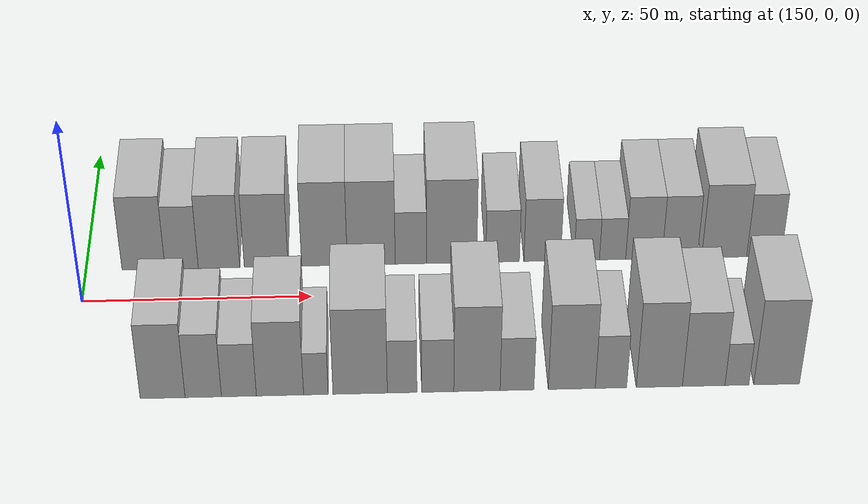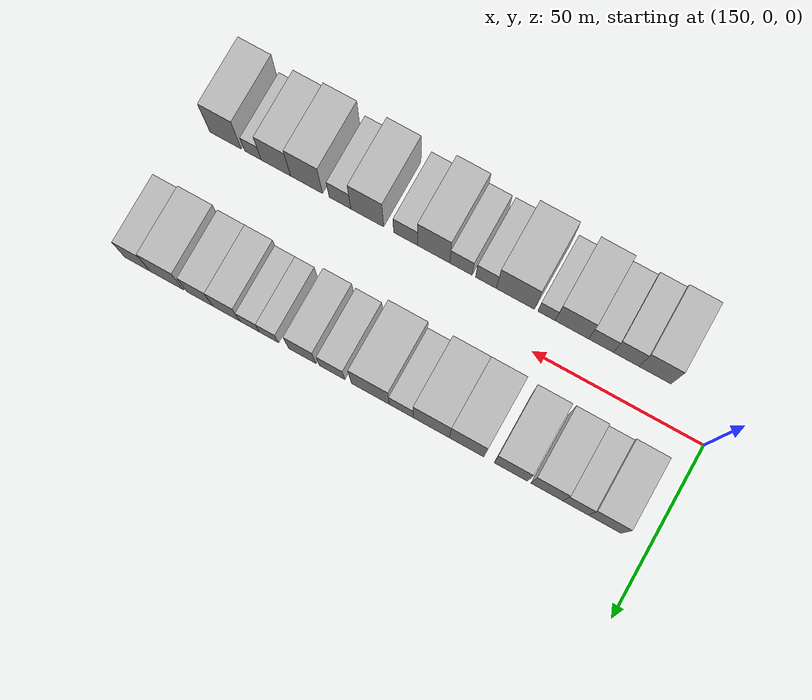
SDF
<sdf version="1.6">
 <world name="default">
  <model name="building_16">
   <static>1</static>
   <pose>162.6856 20.0000 0 0.000000 0.000000 1.570796</pose>
   <link name="link">
    <pose>0 0 10.50 0 0 0</pose>
    <collision name="collision"><geometry><box><size>20.0000 9.4940 21.0000</size></box></geometry></collision>
    <visual name="visual">
     <cast_shadows>0</cast_shadows>
     <geometry><box><size>20.0000 9.4940 21.0000</size></box></geometry>
     <material>
      <script>
       <uri>model://HANNAS_wall/materials/scripts</uri>
       <uri>model://HANNAS_wall/materials/textures</uri>
       <name>vrc/HANNAS_wall</name>
      </script>
     </material>
    </visual>
   </link>
  </model>
  <model name="building_17">
   <static>1</static>
   <pose>171.1041 20.0000 0 0.000000 0.000000 1.570796</pose>
   <link name="link">
    <pose>0 0 9.00 0 0 0</pose>
    <collision name="collision"><geometry><box><size>20.0000 7.3430 18.0000</size></box></geometry></collision>
    <visual name="visual">
     <cast_shadows>0</cast_shadows>
     <geometry><box><size>20.0000 7.3430 18.0000</size></box></geometry>
     <material>
      <script>
       <uri>model://HANNAS_wall/materials/scripts</uri>
       <uri>model://HANNAS_wall/materials/textures</uri>
       <name>vrc/HANNAS_wall</name>
      </script>
     </material>
    </visual>
   </link>
  </model>
  <model name="building_18">
   <static>1</static>
   <pose>179.3679 20.0000 0 0.000000 0.000000 1.570796</pose>
   <link name="link">
    <pose>0 0 10.50 0 0 0</pose>
    <collision name="collision"><geometry><box><size>20.0000 9.1845 21.0000</size></box></geometry></collision>
    <visual name="visual">
     <cast_shadows>0</cast_shadows>
     <geometry><box><size>20.0000 9.1845 21.0000</size></box></geometry>
     <material>
      <script>
       <uri>model://HANNAS_wall/materials/scripts</uri>
       <uri>model://HANNAS_wall/materials/textures</uri>
       <name>vrc/HANNAS_wall</name>
      </script>
     </material>
    </visual>
   </link>
  </model>
  <model name="building_19">
   <static>1</static>
   <pose>189.8093 20.0000 0 0.000000 0.000000 1.570796</pose>
   <link name="link">
    <pose>0 0 10.50 0 0 0</pose>
    <collision name="collision"><geometry><box><size>20.0000 9.6983 21.0000</size></box></geometry></collision>
    <visual name="visual">
     <cast_shadows>0</cast_shadows>
     <geometry><box><size>20.0000 9.6983 21.0000</size></box></geometry>
     <material>
      <script>
       <uri>model://HANNAS_wall/materials/scripts</uri>
       <uri>model://HANNAS_wall/materials/textures</uri>
       <name>vrc/HANNAS_wall</name>
      </script>
     </material>
    </visual>
   </link>
  </model>
  <model name="building_20">
   <static>1</static>
   <pose>202.7111 20.0000 0 0.000000 0.000000 1.570796</pose>
   <link name="link">
    <pose>0 0 12.00 0 0 0</pose>
    <collision name="collision"><geometry><box><size>20.0000 10.1054 24.0000</size></box></geometry></collision>
    <visual name="visual">
     <cast_shadows>0</cast_shadows>
     <geometry><box><size>20.0000 10.1054 24.0000</size></box></geometry>
     <material>
      <script>
       <uri>model://HANNAS_wall/materials/scripts</uri>
       <uri>model://HANNAS_wall/materials/textures</uri>
       <name>vrc/HANNAS_wall</name>
      </script>
     </material>
    </visual>
   </link>
  </model>
  <model name="building_21">
   <static>1</static>
   <pose>213.0783 20.0000 0 0.000000 0.000000 1.570796</pose>
   <link name="link">
    <pose>0 0 12.00 0 0 0</pose>
    <collision name="collision"><geometry><box><size>20.0000 10.6290 24.0000</size></box></geometry></collision>
    <visual name="visual">
     <cast_shadows>0</cast_shadows>
     <geometry><box><size>20.0000 10.6290 24.0000</size></box></geometry>
     <material>
      <script>
       <uri>model://HANNAS_wall/materials/scripts</uri>
       <uri>model://HANNAS_wall/materials/textures</uri>
       <name>vrc/HANNAS_wall</name>
      </script>
     </material>
    </visual>
   </link>
  </model>
  <model name="building_22">
   <static>1</static>
   <pose>221.8662 20.0000 0 0.000000 0.000000 1.570796</pose>
   <link name="link">
    <pose>0 0 7.50 0 0 0</pose>
    <collision name="collision"><geometry><box><size>20.0000 6.9468 15.0000</size></box></geometry></collision>
    <visual name="visual">
     <cast_shadows>0</cast_shadows>
     <geometry><box><size>20.0000 6.9468 15.0000</size></box></geometry>
     <material>
      <script>
       <uri>model://HANNAS_wall/materials/scripts</uri>
       <uri>model://HANNAS_wall/materials/textures</uri>
       <name>vrc/HANNAS_wall</name>
      </script>
     </material>
    </visual>
   </link>
  </model>
  <model name="building_23">
   <static>1</static>
   <pose>230.9216 20.0000 0 0.000000 0.000000 1.570796</pose>
   <link name="link">
    <pose>0 0 12.00 0 0 0</pose>
    <collision name="collision"><geometry><box><size>20.0000 11.1640 24.0000</size></box></geometry></collision>
    <visual name="visual">
     <cast_shadows>0</cast_shadows>
     <geometry><box><size>20.0000 11.1640 24.0000</size></box></geometry>
     <material>
      <script>
       <uri>model://HANNAS_wall/materials/scripts</uri>
       <uri>model://HANNAS_wall/materials/textures</uri>
       <name>vrc/HANNAS_wall</name>
      </script>
     </material>
    </visual>
   </link>
  </model>
  <model name="building_24">
   <static>1</static>
   <pose>242.2442 20.0000 0 0.000000 0.000000 1.570796</pose>
   <link name="link">
    <pose>0 0 7.50 0 0 0</pose>
    <collision name="collision"><geometry><box><size>20.0000 7.4812 15.0000</size></box></geometry></collision>
    <visual name="visual">
     <cast_shadows>0</cast_shadows>
     <geometry><box><size>20.0000 7.4812 15.0000</size></box></geometry>
     <material>
      <script>
       <uri>model://HANNAS_wall/materials/scripts</uri>
       <uri>model://HANNAS_wall/materials/textures</uri>
       <name>vrc/HANNAS_wall</name>
      </script>
     </material>
    </visual>
   </link>
  </model>
  <model name="building_25">
   <static>1</static>
   <pose>251.0758 20.0000 0 0.000000 0.000000 1.570796</pose>
   <link name="link">
    <pose>0 0 9.00 0 0 0</pose>
    <collision name="collision"><geometry><box><size>20.0000 8.1820 18.0000</size></box></geometry></collision>
    <visual name="visual">
     <cast_shadows>0</cast_shadows>
     <geometry><box><size>20.0000 8.1820 18.0000</size></box></geometry>
     <material>
      <script>
       <uri>model://HANNAS_wall/materials/scripts</uri>
       <uri>model://HANNAS_wall/materials/textures</uri>
       <name>vrc/HANNAS_wall</name>
      </script>
     </material>
    </visual>
   </link>
  </model>
  <model name="building_26">
   <static>1</static>
   <pose>260.9896 20.0000 0 0.000000 0.000000 1.570796</pose>
   <link name="link">
    <pose>0 0 6.00 0 0 0</pose>
    <collision name="collision"><geometry><box><size>20.0000 5.6456 12.0000</size></box></geometry></collision>
    <visual name="visual">
     <cast_shadows>0</cast_shadows>
     <geometry><box><size>20.0000 5.6456 12.0000</size></box></geometry>
     <material>
      <script>
       <uri>model://HANNAS_wall/materials/scripts</uri>
       <uri>model://HANNAS_wall/materials/textures</uri>
       <name>vrc/HANNAS_wall</name>
      </script>
     </material>
    </visual>
   </link>
  </model>
  <model name="building_27">
   <static>1</static>
   <pose>266.7428 20.0000 0 0.000000 0.000000 1.570796</pose>
   <link name="link">
    <pose>0 0 6.00 0 0 0</pose>
    <collision name="collision"><geometry><box><size>20.0000 5.8609 12.0000</size></box></geometry></collision>
    <visual name="visual">
     <cast_shadows>0</cast_shadows>
     <geometry><box><size>20.0000 5.8609 12.0000</size></box></geometry>
     <material>
      <script>
       <uri>model://HANNAS_wall/materials/scripts</uri>
       <uri>model://HANNAS_wall/materials/textures</uri>
       <name>vrc/HANNAS_wall</name>
      </script>
     </material>
    </visual>
   </link>
  </model>
  <model name="building_28">
   <static>1</static>
   <pose>273.7163 20.0000 0 0.000000 0.000000 1.570796</pose>
   <link name="link">
    <pose>0 0 9.00 0 0 0</pose>
    <collision name="collision"><geometry><box><size>20.0000 8.0861 18.0000</size></box></geometry></collision>
    <visual name="visual">
     <cast_shadows>0</cast_shadows>
     <geometry><box><size>20.0000 8.0861 18.0000</size></box></geometry>
     <material>
      <script>
       <uri>model://HANNAS_wall/materials/scripts</uri>
       <uri>model://HANNAS_wall/materials/textures</uri>
       <name>vrc/HANNAS_wall</name>
      </script>
     </material>
    </visual>
   </link>
  </model>
  <model name="building_29">
   <static>1</static>
   <pose>281.6931 20.0000 0 0.000000 0.000000 1.570796</pose>
   <link name="link">
    <pose>0 0 9.00 0 0 0</pose>
    <collision name="collision"><geometry><box><size>20.0000 7.8675 18.0000</size></box></geometry></collision>
    <visual name="visual">
     <cast_shadows>0</cast_shadows>
     <geometry><box><size>20.0000 7.8675 18.0000</size></box></geometry>
     <material>
      <script>
       <uri>model://HANNAS_wall/materials/scripts</uri>
       <uri>model://HANNAS_wall/materials/textures</uri>
       <name>vrc/HANNAS_wall</name>
      </script>
     </material>
    </visual>
   </link>
  </model>
  <model name="building_30">
   <static>1</static>
   <pose>291.6609 20.0000 0 0.000000 0.000000 1.570796</pose>
   <link name="link">
    <pose>0 0 10.50 0 0 0</pose>
    <collision name="collision"><geometry><box><size>20.0000 10.0680 21.0000</size></box></geometry></collision>
    <visual name="visual">
     <cast_shadows>0</cast_shadows>
     <geometry><box><size>20.0000 10.0680 21.0000</size></box></geometry>
     <material>
      <script>
       <uri>model://HANNAS_wall/materials/scripts</uri>
       <uri>model://HANNAS_wall/materials/textures</uri>
       <name>vrc/HANNAS_wall</name>
      </script>
     </material>
    </visual>
   </link>
  </model>
  <model name="building_31">
   <static>1</static>
   <pose>300.5624 20.0000 0 0.000000 0.000000 1.570796</pose>
   <link name="link">
    <pose>0 0 9.00 0 0 0</pose>
    <collision name="collision"><geometry><box><size>20.0000 7.7350 18.0000</size></box></geometry></collision>
    <visual name="visual">
     <cast_shadows>0</cast_shadows>
     <geometry><box><size>20.0000 7.7350 18.0000</size></box></geometry>
     <material>
      <script>
       <uri>model://HANNAS_wall/materials/scripts</uri>
       <uri>model://HANNAS_wall/materials/textures</uri>
       <name>vrc/HANNAS_wall</name>
      </script>
     </material>
    </visual>
   </link>
  </model>
  <model name="building_47">
   <static>1</static>
   <pose>169.2884 -20.0000 0 0.000000 0.000000 1.570796</pose>
   <link name="link">
    <pose>0 0 10.50 0 0 0</pose>
    <collision name="collision"><geometry><box><size>20.0000 9.3111 21.0000</size></box></geometry></collision>
    <visual name="visual">
     <cast_shadows>0</cast_shadows>
     <geometry><box><size>20.0000 9.3111 21.0000</size></box></geometry>
     <material>
      <script>
       <uri>model://HANNAS_wall/materials/scripts</uri>
       <uri>model://HANNAS_wall/materials/textures</uri>
       <name>vrc/HANNAS_wall</name>
      </script>
     </material>
    </visual>
   </link>
  </model>
  <model name="building_48">
   <static>1</static>
   <pose>177.7192 -20.0000 0 0.000000 0.000000 1.570796</pose>
   <link name="link">
    <pose>0 0 9.00 0 0 0</pose>
    <collision name="collision"><geometry><box><size>20.0000 7.5505 18.0000</size></box></geometry></collision>
    <visual name="visual">
     <cast_shadows>0</cast_shadows>
     <geometry><box><size>20.0000 7.5505 18.0000</size></box></geometry>
     <material>
      <script>
       <uri>model://HANNAS_wall/materials/scripts</uri>
       <uri>model://HANNAS_wall/materials/textures</uri>
       <name>vrc/HANNAS_wall</name>
      </script>
     </material>
    </visual>
   </link>
  </model>
  <model name="building_49">
   <static>1</static>
   <pose>185.1221 -20.0000 0 0.000000 0.000000 1.570796</pose>
   <link name="link">
    <pose>0 0 7.50 0 0 0</pose>
    <collision name="collision"><geometry><box><size>20.0000 7.2553 15.0000</size></box></geometry></collision>
    <visual name="visual">
     <cast_shadows>0</cast_shadows>
     <geometry><box><size>20.0000 7.2553 15.0000</size></box></geometry>
     <material>
      <script>
       <uri>model://HANNAS_wall/materials/scripts</uri>
       <uri>model://HANNAS_wall/materials/textures</uri>
       <name>vrc/HANNAS_wall</name>
      </script>
     </material>
    </visual>
   </link>
  </model>
  <model name="building_50">
   <static>1</static>
   <pose>193.6563 -20.0000 0 0.000000 0.000000 1.570796</pose>
   <link name="link">
    <pose>0 0 10.50 0 0 0</pose>
    <collision name="collision"><geometry><box><size>20.0000 9.8132 21.0000</size></box></geometry></collision>
    <visual name="visual">
     <cast_shadows>0</cast_shadows>
     <geometry><box><size>20.0000 9.8132 21.0000</size></box></geometry>
     <material>
      <script>
       <uri>model://HANNAS_wall/materials/scripts</uri>
       <uri>model://HANNAS_wall/materials/textures</uri>
       <name>vrc/HANNAS_wall</name>
      </script>
     </material>
    </visual>
   </link>
  </model>
  <model name="building_51">
   <static>1</static>
   <pose>201.1185 -20.0000 0 0.000000 0.000000 1.570796</pose>
   <link name="link">
    <pose>0 0 6.00 0 0 0</pose>
    <collision name="collision"><geometry><box><size>20.0000 5.1112 12.0000</size></box></geometry></collision>
    <visual name="visual">
     <cast_shadows>0</cast_shadows>
     <geometry><box><size>20.0000 5.1112 12.0000</size></box></geometry>
     <material>
      <script>
       <uri>model://HANNAS_wall/materials/scripts</uri>
       <uri>model://HANNAS_wall/materials/textures</uri>
       <name>vrc/HANNAS_wall</name>
      </script>
     </material>
    </visual>
   </link>
  </model>
  <model name="building_52">
   <static>1</static>
   <pose>210.3278 -20.0000 0 0.000000 0.000000 1.570796</pose>
   <link name="link">
    <pose>0 0 12.00 0 0 0</pose>
    <collision name="collision"><geometry><box><size>20.0000 11.3072 24.0000</size></box></geometry></collision>
    <visual name="visual">
     <cast_shadows>0</cast_shadows>
     <geometry><box><size>20.0000 11.3072 24.0000</size></box></geometry>
     <material>
      <script>
       <uri>model://HANNAS_wall/materials/scripts</uri>
       <uri>model://HANNAS_wall/materials/textures</uri>
       <name>vrc/HANNAS_wall</name>
      </script>
     </material>
    </visual>
   </link>
  </model>
  <model name="building_53">
   <static>1</static>
   <pose>219.0681 -20.0000 0 0.000000 0.000000 1.570796</pose>
   <link name="link">
    <pose>0 0 7.50 0 0 0</pose>
    <collision name="collision"><geometry><box><size>20.0000 6.1735 15.0000</size></box></geometry></collision>
    <visual name="visual">
     <cast_shadows>0</cast_shadows>
     <geometry><box><size>20.0000 6.1735 15.0000</size></box></geometry>
     <material>
      <script>
       <uri>model://HANNAS_wall/materials/scripts</uri>
       <uri>model://HANNAS_wall/materials/textures</uri>
       <name>vrc/HANNAS_wall</name>
      </script>
     </material>
    </visual>
   </link>
  </model>
  <model name="building_54">
   <static>1</static>
   <pose>226.4964 -20.0000 0 0.000000 0.000000 1.570796</pose>
   <link name="link">
    <pose>0 0 7.50 0 0 0</pose>
    <collision name="collision"><geometry><box><size>20.0000 6.6829 15.0000</size></box></geometry></collision>
    <visual name="visual">
     <cast_shadows>0</cast_shadows>
     <geometry><box><size>20.0000 6.6829 15.0000</size></box></geometry>
     <material>
      <script>
       <uri>model://HANNAS_wall/materials/scripts</uri>
       <uri>model://HANNAS_wall/materials/textures</uri>
       <name>vrc/HANNAS_wall</name>
      </script>
     </material>
    </visual>
   </link>
  </model>
  <model name="building_55">
   <static>1</static>
   <pose>234.6679 -20.0000 0 0.000000 0.000000 1.570796</pose>
   <link name="link">
    <pose>0 0 12.00 0 0 0</pose>
    <collision name="collision"><geometry><box><size>20.0000 9.6603 24.0000</size></box></geometry></collision>
    <visual name="visual">
     <cast_shadows>0</cast_shadows>
     <geometry><box><size>20.0000 9.6603 24.0000</size></box></geometry>
     <material>
      <script>
       <uri>model://HANNAS_wall/materials/scripts</uri>
       <uri>model://HANNAS_wall/materials/textures</uri>
       <name>vrc/HANNAS_wall</name>
      </script>
     </material>
    </visual>
   </link>
  </model>
  <model name="building_56">
   <static>1</static>
   <pose>243.0298 -20.0000 0 0.000000 0.000000 1.570796</pose>
   <link name="link">
    <pose>0 0 7.50 0 0 0</pose>
    <collision name="collision"><geometry><box><size>20.0000 7.0635 15.0000</size></box></geometry></collision>
    <visual name="visual">
     <cast_shadows>0</cast_shadows>
     <geometry><box><size>20.0000 7.0635 15.0000</size></box></geometry>
     <material>
      <script>
       <uri>model://HANNAS_wall/materials/scripts</uri>
       <uri>model://HANNAS_wall/materials/textures</uri>
       <name>vrc/HANNAS_wall</name>
      </script>
     </material>
    </visual>
   </link>
  </model>
  <model name="building_57">
   <static>1</static>
   <pose>254.4848 -20.0000 0 0.000000 0.000000 1.570796</pose>
   <link name="link">
    <pose>0 0 12.00 0 0 0</pose>
    <collision name="collision"><geometry><box><size>20.0000 9.8466 24.0000</size></box></geometry></collision>
    <visual name="visual">
     <cast_shadows>0</cast_shadows>
     <geometry><box><size>20.0000 9.8466 24.0000</size></box></geometry>
     <material>
      <script>
       <uri>model://HANNAS_wall/materials/scripts</uri>
       <uri>model://HANNAS_wall/materials/textures</uri>
       <name>vrc/HANNAS_wall</name>
      </script>
     </material>
    </visual>
   </link>
  </model>
  <model name="building_58">
   <static>1</static>
   <pose>262.6846 -20.0000 0 0.000000 0.000000 1.570796</pose>
   <link name="link">
    <pose>0 0 7.50 0 0 0</pose>
    <collision name="collision"><geometry><box><size>20.0000 6.5530 15.0000</size></box></geometry></collision>
    <visual name="visual">
     <cast_shadows>0</cast_shadows>
     <geometry><box><size>20.0000 6.5530 15.0000</size></box></geometry>
     <material>
      <script>
       <uri>model://HANNAS_wall/materials/scripts</uri>
       <uri>model://HANNAS_wall/materials/textures</uri>
       <name>vrc/HANNAS_wall</name>
      </script>
     </material>
    </visual>
   </link>
  </model>
  <model name="building_59">
   <static>1</static>
   <pose>272.7969 -20.0000 0 0.000000 0.000000 1.570796</pose>
   <link name="link">
    <pose>0 0 12.00 0 0 0</pose>
    <collision name="collision"><geometry><box><size>20.0000 9.6715 24.0000</size></box></geometry></collision>
    <visual name="visual">
     <cast_shadows>0</cast_shadows>
     <geometry><box><size>20.0000 9.6715 24.0000</size></box></geometry>
     <material>
      <script>
       <uri>model://HANNAS_wall/materials/scripts</uri>
       <uri>model://HANNAS_wall/materials/textures</uri>
       <name>vrc/HANNAS_wall</name>
      </script>
     </material>
    </visual>
   </link>
  </model>
  <model name="building_60">
   <static>1</static>
   <pose>282.0987 -20.0000 0 0.000000 0.000000 1.570796</pose>
   <link name="link">
    <pose>0 0 10.50 0 0 0</pose>
    <collision name="collision"><geometry><box><size>20.0000 8.9321 21.0000</size></box></geometry></collision>
    <visual name="visual">
     <cast_shadows>0</cast_shadows>
     <geometry><box><size>20.0000 8.9321 21.0000</size></box></geometry>
     <material>
      <script>
       <uri>model://HANNAS_wall/materials/scripts</uri>
       <uri>model://HANNAS_wall/materials/textures</uri>
       <name>vrc/HANNAS_wall</name>
      </script>
     </material>
    </visual>
   </link>
  </model>
  <model name="building_61">
   <static>1</static>
   <pose>289.0811 -20.0000 0 0.000000 0.000000 1.570796</pose>
   <link name="link">
    <pose>0 0 6.00 0 0 0</pose>
    <collision name="collision"><geometry><box><size>20.0000 5.0326 12.0000</size></box></geometry></collision>
    <visual name="visual">
     <cast_shadows>0</cast_shadows>
     <geometry><box><size>20.0000 5.0326 12.0000</size></box></geometry>
     <material>
      <script>
       <uri>model://HANNAS_wall/materials/scripts</uri>
       <uri>model://HANNAS_wall/materials/textures</uri>
       <name>vrc/HANNAS_wall</name>
      </script>
     </material>
    </visual>
   </link>
  </model>
  <model name="building_62">
   <static>1</static>
   <pose>297.4110 -20.0000 0 0.000000 0.000000 1.570796</pose>
   <link name="link">
    <pose>0 0 12.00 0 0 0</pose>
    <collision name="collision"><geometry><box><size>20.0000 9.6272 24.0000</size></box></geometry></collision>
    <visual name="visual">
     <cast_shadows>0</cast_shadows>
     <geometry><box><size>20.0000 9.6272 24.0000</size></box></geometry>
     <material>
      <script>
       <uri>model://HANNAS_wall/materials/scripts</uri>
       <uri>model://HANNAS_wall/materials/textures</uri>
       <name>vrc/HANNAS_wall</name>
      </script>
     </material>
    </visual>
   </link>
  </model>
 </world>
</sdf>
